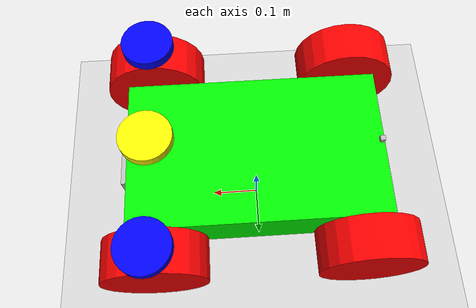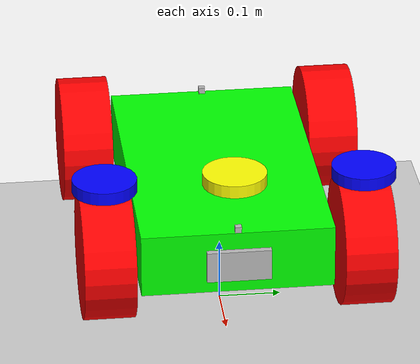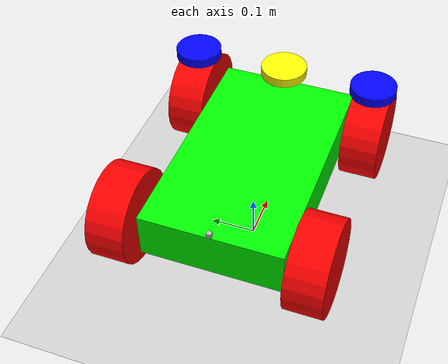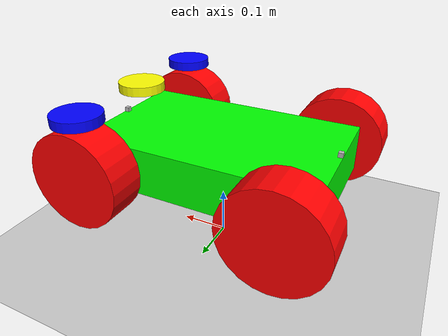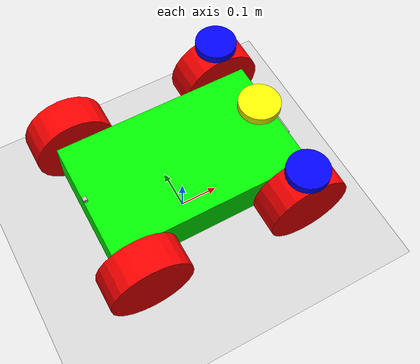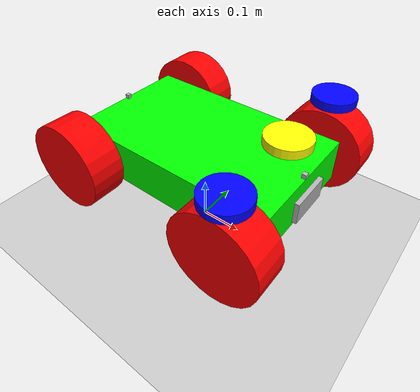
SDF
<sdf version="1.6">
 <world name="steer_bot_playpen">
  <physics name="1ms" type="ode">
   <max_step_size>0.001</max_step_size>
   <real_time_factor>1.0</real_time_factor>
  </physics>
  <plugin filename="libignition-gazebo-physics-system.so" name="ignition::gazebo::systems::Physics"/>
  <plugin filename="ignition-gazebo-sensors-system" name="ignition::gazebo::systems::Sensors">
   <render_engine>ogre2</render_engine>
  </plugin>
  <plugin filename="libignition-gazebo-user-commands-system.so" name="ignition::gazebo::systems::UserCommands"/>
  <plugin filename="libignition-gazebo-scene-broadcaster-system.so" name="ignition::gazebo::systems::SceneBroadcaster"/>
  <plugin filename="libignition-gazebo-imu-system.so" name="ignition::gazebo::systems::Imu"/>
  <scene><ambient>0.7 0.7 0.7</ambient><background>0.8 0.8 0.8</background></scene>
  <light type="directional" name="sun">
   <pose>0 0 10 0 0 0</pose>
   <diffuse>0.8 0.8 0.8 1</diffuse>
   <specular>0.2 0.2 0.2 1</specular>
   <direction>-0.5 0.1 -0.9</direction>
  </light>
  <include>
   <name>ground plane</name>
   <static>1</static>
   <uri>https://fuel.ignitionrobotics.org/1.0/OpenRobotics/models/ground plane</uri>
  </include>
  <include><pose>0 0 0.2 0 0 0</pose><name>steer_bot_01</name><uri>model://steer_bot_ardupilot</uri></include>
 </world>
</sdf>

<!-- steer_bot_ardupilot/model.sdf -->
<sdf version='1.6'>
<model name='steer_bot_ardupilot'>
    <link name='base_link'>
      <inertial>
        <pose>0 0 0 0 -0 0</pose>
        <mass>5</mass>
        <inertia>
          <ixx>0.0416667</ixx>
          <ixy>0</ixy>
          <ixz>0</ixz>
          <iyy>0.108333</iyy>
          <iyz>0</iyz>
          <izz>0.141667</izz>
        </inertia>
      </inertial>
      <collision name='base_link_collision'>
        <pose>0 0 0 0 -0 0</pose>
        <geometry>
          <box>
            <size>0.5 0.3 0.1</size>
          </box>
        </geometry>
        <surface>
          <contact>
            <ode/>
          </contact>
          <friction>
            <ode/>
          </friction>
        </surface>
      </collision>
      <visual name='base_link_visual'>
        <pose>0 0 0 0 -0 0</pose>
        <geometry>
          <box>
            <size>0.5 0.3 0.1</size>
          </box>
        </geometry>
        <material>
          <ambient>0 1 0</ambient>
          <diffuse>0 1 0</diffuse>
          <specular>0.1 0.1 0.1 1</specular>
        </material>
      </visual>
      <gravity>1</gravity>
      <velocity_decay/>
    </link>
    <joint name='front_left_steer_joint' type='revolute'>
      <pose relative_to='base_link'>0.2 0.2 0.12 0 -0 0</pose>
      <parent>base_link</parent>
      <child>front_left_steer_link</child>
      <axis>
        <xyz>0 0 1</xyz>
        <limit>
          <lower>-3.14159</lower>
          <upper>3.14159</upper>
          <effort>10</effort>
          <velocity>5</velocity>
        </limit>
        <dynamics>
          <spring_reference>0</spring_reference>
          <spring_stiffness>0</spring_stiffness>
        </dynamics>
      </axis>
    </joint>
    <link name='front_left_steer_link'>
      <pose relative_to='front_left_steer_joint'>0 0 0 0 -0 0</pose>
      <inertial>
        <pose>0 0 0 0 -0 0</pose>
        <mass>1</mass>
        <inertia>
          <ixx>0.000658333</ixx>
          <ixy>0</ixy>
          <ixz>0</ixz>
          <iyy>0.000658333</iyy>
          <iyz>0</iyz>
          <izz>0.00125</izz>
        </inertia>
      </inertial>
      <collision name='front_left_steer_link_collision'>
        <pose>0 0 0 0 -0 0</pose>
        <geometry>
          <cylinder>
            <length>0.02</length>
            <radius>0.05</radius>
          </cylinder>
        </geometry>
        <surface>
          <contact>
            <ode/>
          </contact>
          <friction>
            <ode/>
          </friction>
        </surface>
      </collision>
      <visual name='front_left_steer_link_visual'>
        <pose>0 0 0 0 -0 0</pose>
        <geometry>
          <cylinder>
            <length>0.02</length>
            <radius>0.05</radius>
          </cylinder>
        </geometry>
        <material>
            <ambient>0 0 1</ambient>
            <diffuse>0 0 1</diffuse>
            <specular>0.1 0.1 0.1 1</specular>
        </material>
      </visual>
      <gravity>1</gravity>
      <velocity_decay/>
    </link>
    <joint name='front_left_wheel_joint' type='revolute'>
      <pose relative_to='front_left_steer_link'>0 0 -0.12 -1.5708 0 0</pose>
      <parent>front_left_steer_link</parent>
      <child>front_left_wheel_link</child>
      <axis>
        <xyz>0 0 1</xyz>
        <limit>
          <lower>-1e+16</lower>
          <upper>1e+16</upper>
        </limit>
        <dynamics>
          <spring_reference>0</spring_reference>
          <spring_stiffness>0</spring_stiffness>
        </dynamics>
      </axis>
    </joint>
    <link name='front_left_wheel_link'>
      <pose relative_to='front_left_wheel_joint'>0 0 0 0 -0 0</pose>
      <inertial>
        <pose>0 0 0 0 -0 0</pose>
        <mass>1</mass>
        <inertia>
          <ixx>0.00303333</ixx>
          <ixy>0</ixy>
          <ixz>0</ixz>
          <iyy>0.00303333</iyy>
          <iyz>0</iyz>
          <izz>0.005</izz>
        </inertia>
      </inertial>
      <collision name='front_left_wheel_link_collision'>
        <pose>0 0 0 0 -0 0</pose>
        <geometry>
          <cylinder>
            <length>0.08</length>
            <radius>0.1</radius>
          </cylinder>
        </geometry>
        <surface>
          <contact>
            <ode/>
          </contact>
          <friction>
            <ode/>
          </friction>
        </surface>
      </collision>
      <visual name='front_left_wheel_link_visual'>
        <pose>0 0 0 0 -0 0</pose>
        <geometry>
          <cylinder>
            <length>0.08</length>
            <radius>0.1</radius>
          </cylinder>
        </geometry>
        <material>
            <ambient>1 0 0</ambient>
            <diffuse>1 0 0</diffuse>
            <specular>0.1 0.1 0.1 1</specular>
        </material>
      </visual>
      <gravity>1</gravity>
      <velocity_decay/>
    </link>
    <joint name='front_right_steer_joint' type='revolute'>
      <pose relative_to='base_link'>0.2 -0.2 0.12 0 -0 0</pose>
      <parent>base_link</parent>
      <child>front_right_steer_link</child>
      <axis>
        <xyz>0 0 1</xyz>
        <limit>
          <lower>-3.14159</lower>
          <upper>3.14159</upper>
          <effort>10</effort>
          <velocity>5</velocity>
        </limit>
        <dynamics>
          <spring_reference>0</spring_reference>
          <spring_stiffness>0</spring_stiffness>
        </dynamics>
      </axis>
    </joint>
    <link name='front_right_steer_link'>
      <pose relative_to='front_right_steer_joint'>0 0 0 0 -0 0</pose>
      <inertial>
        <pose>0 0 0 0 -0 0</pose>
        <mass>1</mass>
        <inertia>
          <ixx>0.000658333</ixx>
          <ixy>0</ixy>
          <ixz>0</ixz>
          <iyy>0.000658333</iyy>
          <iyz>0</iyz>
          <izz>0.00125</izz>
        </inertia>
      </inertial>
      <collision name='front_right_steer_link_collision'>
        <pose>0 0 0 0 -0 0</pose>
        <geometry>
          <cylinder>
            <length>0.02</length>
            <radius>0.05</radius>
          </cylinder>
        </geometry>
        <surface>
          <contact>
            <ode/>
          </contact>
          <friction>
            <ode/>
          </friction>
        </surface>
      </collision>
      <visual name='front_right_steer_link_visual'>
        <pose>0 0 0 0 -0 0</pose>
        <geometry>
          <cylinder>
            <length>0.02</length>
            <radius>0.05</radius>
          </cylinder>
        </geometry>
        <material>
            <ambient>0 0 1</ambient>
            <diffuse>0 0 1</diffuse>
            <specular>0.1 0.1 0.1 1</specular>
        </material>
      </visual>
      <gravity>1</gravity>
      <velocity_decay/>
    </link>
    <joint name='front_right_wheel_joint' type='revolute'>
      <pose relative_to='front_right_steer_link'>0 0 -0.12 -1.5708 0 0</pose>
      <parent>front_right_steer_link</parent>
      <child>front_right_wheel_link</child>
      <axis>
        <xyz>0 0 1</xyz>
        <limit>
          <lower>-1e+16</lower>
          <upper>1e+16</upper>
        </limit>
        <dynamics>
          <spring_reference>0</spring_reference>
          <spring_stiffness>0</spring_stiffness>
        </dynamics>
      </axis>
    </joint>
    <link name='front_right_wheel_link'>
      <pose relative_to='front_right_wheel_joint'>0 0 0 0 -0 0</pose>
      <inertial>
        <pose>0 0 0 0 -0 0</pose>
        <mass>1</mass>
        <inertia>
          <ixx>0.00303333</ixx>
          <ixy>0</ixy>
          <ixz>0</ixz>
          <iyy>0.00303333</iyy>
          <iyz>0</iyz>
          <izz>0.005</izz>
        </inertia>
      </inertial>
      <collision name='front_right_wheel_link_collision'>
        <pose>0 0 0 0 -0 0</pose>
        <geometry>
          <cylinder>
            <length>0.08</length>
            <radius>0.1</radius>
          </cylinder>
        </geometry>
        <surface>
          <contact>
            <ode/>
          </contact>
          <friction>
            <ode/>
          </friction>
        </surface>
      </collision>
      <visual name='front_right_wheel_link_visual'>
        <pose>0 0 0 0 -0 0</pose>
        <geometry>
          <cylinder>
            <length>0.08</length>
            <radius>0.1</radius>
          </cylinder>
        </geometry>
        <material>
            <ambient>1 0 0</ambient>
            <diffuse>1 0 0</diffuse>
            <specular>0.1 0.1 0.1 1</specular>
        </material>
      </visual>
      <gravity>1</gravity>
      <velocity_decay/>
    </link>
    <joint name='front_steer_joint' type='revolute'>
      <pose relative_to='base_link'>0.2 0 0.12 0 -0 0</pose>
      <parent>base_link</parent>
      <child>front_steer_link</child>
      <axis>
        <xyz>0 0 1</xyz>
        <limit>
          <lower>-3.14159</lower>
          <upper>3.14159</upper>
          <effort>10</effort>
          <velocity>5</velocity>
        </limit>
        <dynamics>
          <spring_reference>0</spring_reference>
          <spring_stiffness>0</spring_stiffness>
        </dynamics>
      </axis>
    </joint>
    <link name='front_steer_link'>
      <pose relative_to='front_steer_joint'>0 0 0 0 -0 0</pose>
      <inertial>
        <pose>0 0 0 0 -0 0</pose>
        <mass>1</mass>
        <inertia>
          <ixx>0.000658333</ixx>
          <ixy>0</ixy>
          <ixz>0</ixz>
          <iyy>0.000658333</iyy>
          <iyz>0</iyz>
          <izz>0.00125</izz>
        </inertia>
      </inertial>
      <collision name='front_steer_link_collision'>
        <pose>0 0 0 0 -0 0</pose>
        <geometry>
          <cylinder>
            <length>0.02</length>
            <radius>0.05</radius>
          </cylinder>
        </geometry>
        <surface>
          <contact>
            <ode/>
          </contact>
          <friction>
            <ode/>
          </friction>
        </surface>
      </collision>
      <visual name='front_steer_link_visual'>
        <pose>0 0 0 0 -0 0</pose>
        <geometry>
          <cylinder>
            <length>0.02</length>
            <radius>0.05</radius>
          </cylinder>
        </geometry>
        <material>
            <ambient>1 1 0 1</ambient>
            <diffuse>1 1 0 1</diffuse>
            <specular>0 0 0 0</specular>
        </material>
      </visual>
      <gravity>1</gravity>
      <velocity_decay/>
    </link>
    <joint name='rear_left_wheel_joint' type='revolute'>
      <pose relative_to='base_link'>-0.2 0.2 0 -1.5708 0 0</pose>
      <parent>base_link</parent>
      <child>rear_left_wheel_link</child>
      <axis>
        <xyz>0 0 1</xyz>
        <limit>
          <lower>-1e+16</lower>
          <upper>1e+16</upper>
        </limit>
        <dynamics>
          <spring_reference>0</spring_reference>
          <spring_stiffness>0</spring_stiffness>
        </dynamics>
      </axis>
    </joint>
    <link name='rear_left_wheel_link'>
      <pose relative_to='rear_left_wheel_joint'>0 0 0 0 -0 0</pose>
      <inertial>
        <pose>0 0 0 0 -0 0</pose>
        <mass>1</mass>
        <inertia>
          <ixx>0.00303333</ixx>
          <ixy>0</ixy>
          <ixz>0</ixz>
          <iyy>0.00303333</iyy>
          <iyz>0</iyz>
          <izz>0.005</izz>
        </inertia>
      </inertial>
      <collision name='rear_left_wheel_link_collision'>
        <pose>0 0 0 0 -0 0</pose>
        <geometry>
          <cylinder>
            <length>0.08</length>
            <radius>0.1</radius>
          </cylinder>
        </geometry>
        <surface>
          <contact>
            <ode/>
          </contact>
          <friction>
            <ode/>
          </friction>
        </surface>
      </collision>
      <visual name='rear_left_wheel_link_visual'>
        <pose>0 0 0 0 -0 0</pose>
        <geometry>
          <cylinder>
            <length>0.08</length>
            <radius>0.1</radius>
          </cylinder>
        </geometry>
        <material>
            <ambient>1 0 0</ambient>
            <diffuse>1 0 0</diffuse>
            <specular>0.1 0.1 0.1 1</specular>
        </material>
      </visual>
      <gravity>1</gravity>
      <velocity_decay/>
    </link>
    <joint name='rear_right_wheel_joint' type='revolute'>
      <pose relative_to='base_link'>-0.2 -0.2 0 -1.5708 0 0</pose>
      <parent>base_link</parent>
      <child>rear_right_wheel_link</child>
      <axis>
        <xyz>0 0 1</xyz>
        <limit>
          <lower>-1e+16</lower>
          <upper>1e+16</upper>
        </limit>
        <dynamics>
          <spring_reference>0</spring_reference>
          <spring_stiffness>0</spring_stiffness>
        </dynamics>
      </axis>
    </joint>
    <link name='rear_right_wheel_link'>
      <pose relative_to='rear_right_wheel_joint'>0 0 0 0 -0 0</pose>
      <inertial>
        <pose>0 0 0 0 -0 0</pose>
        <mass>1</mass>
        <inertia>
          <ixx>0.00303333</ixx>
          <ixy>0</ixy>
          <ixz>0</ixz>
          <iyy>0.00303333</iyy>
          <iyz>0</iyz>
          <izz>0.005</izz>
        </inertia>
      </inertial>
      <collision name='rear_right_wheel_link_collision'>
        <pose>0 0 0 0 -0 0</pose>
        <geometry>
          <cylinder>
            <length>0.08</length>
            <radius>0.1</radius>
          </cylinder>
        </geometry>
        <surface>
          <contact>
            <ode/>
          </contact>
          <friction>
            <ode/>
          </friction>
        </surface>
      </collision>
      <visual name='rear_right_wheel_link_visual'>
        <pose>0 0 0 0 -0 0</pose>
        <geometry>
          <cylinder>
            <length>0.08</length>
            <radius>0.1</radius>
          </cylinder>
        </geometry>
        <material>
            <ambient>1 0 0</ambient>
            <diffuse>1 0 0</diffuse>
            <specular>0.1 0.1 0.1 1</specular>
        </material>
      </visual>
      <gravity>1</gravity>
      <velocity_decay/>
    </link>
    <joint name='rear_wheel_joint' type='revolute'>
      <pose relative_to='base_link'>-0.2 0 0 -1.5708 0 0</pose>
      <parent>base_link</parent>
      <child>rear_wheel_link</child>
      <axis>
        <xyz>0 0 1</xyz>
        <limit>
          <lower>-1e+16</lower>
          <upper>1e+16</upper>
        </limit>
        <dynamics>
          <spring_reference>0</spring_reference>
          <spring_stiffness>0</spring_stiffness>
        </dynamics>
      </axis>
    </joint>
    <link name='rear_wheel_link'>
      <pose relative_to='rear_wheel_joint'>0 0 0 0 -0 0</pose>
      <inertial>
        <pose>0 0 0 0 -0 0</pose>
        <mass>0.03125</mass>
        <inertia>
          <ixx>9.04948e-06</ixx>
          <ixy>0</ixy>
          <ixz>0</ixz>
          <iyy>9.04948e-06</iyy>
          <iyz>0</iyz>
          <izz>9.76563e-06</izz>
        </inertia>
      </inertial>
      <collision name='rear_wheel_link_collision'>
        <pose>0 0 0 0 -0 0</pose>
        <geometry>
          <cylinder>
            <length>0.04</length>
            <radius>0.025</radius>
          </cylinder>
        </geometry>
        <surface>
          <contact>
            <ode/>
          </contact>
          <friction>
            <ode/>
          </friction>
        </surface>
      </collision>
      <visual name='rear_wheel_link_visual'>
        <pose>0 0 0 0 -0 0</pose>
        <geometry>
          <cylinder>
            <length>0.04</length>
            <radius>0.025</radius>
          </cylinder>
        </geometry>
        <material>
            <ambient>1 1 0 1</ambient>
            <diffuse>1 1 0 1</diffuse>
            <specular>0 0 0 0</specular>
        </material>
      </visual>
      <gravity>1</gravity>
      <velocity_decay/>
    </link>

    <!-- plugins -->
    <plugin name="ignition::gazebo::systems::JointStatePublisher"
        filename="libignition-gazebo-joint-state-publisher-system.so">
    </plugin>
    <plugin name="ignition::gazebo::systems::ApplyJointForce"
        filename="libignition-gazebo-apply-joint-force-system.so">
        <joint_name>rear_left_wheel_joint</joint_name>
    </plugin>
    <plugin name="ignition::gazebo::systems::ApplyJointForce"
        filename="libignition-gazebo-apply-joint-force-system.so">
        <joint_name>rear_right_wheel_joint</joint_name>
    </plugin>
    <plugin name="ignition::gazebo::systems::ApplyJointForce"
        filename="libignition-gazebo-apply-joint-force-system.so">
        <joint_name>front_left_steer_joint</joint_name>
    </plugin>
    <plugin name="ignition::gazebo::systems::ApplyJointForce"
        filename="libignition-gazebo-apply-joint-force-system.so">
        <joint_name>front_right_steer_joint</joint_name>
    </plugin>
    <plugin name="ArduPilotPlugin"
        filename="libArduPilotPlugin.so">
        <!-- Port settings -->
        <fdm_addr>127.0.0.1</fdm_addr>
        <fdm_port_in>9002</fdm_port_in>
        <connectionTimeoutMaxCount>5</connectionTimeoutMaxCount>
        <modelXYZToAirplaneXForwardZDown>0 0 0 3.141593 0 0</modelXYZToAirplaneXForwardZDown>
        <gazeboXYZToNED>0 0 0 3.141593 0 0</gazeboXYZToNED>

        <!-- Sensors -->
        <imuName>imu_sensor</imuName>

        <!-- Control / channels -->

        <!--
            SERVO1_FUNCTION 94 (Script 1)
        -->
        <control channel="0">
            <jointName>rear_left_wheel_joint</jointName>
            <useForce>1</useForce>
            <multiplier>100.0</multiplier>
            <offset>-0.5</offset>
            <servo_min>1000</servo_min>
            <servo_max>2000</servo_max>
            <type>VELOCITY</type>
            <p_gain>1</p_gain>
            <i_gain>0</i_gain>
            <d_gain>0</d_gain>
            <i_max>1</i_max>
            <i_min>0</i_min>
            <cmd_max>50.0</cmd_max>
            <cmd_min>-50.0</cmd_min>
        </control>

        <!--
            SERVO2_FUNCTION 95 (Script 2)
        -->
        <control channel="1">
            <jointName>rear_right_wheel_joint</jointName>
            <useForce>1</useForce>
            <multiplier>100.0</multiplier>
            <offset>-0.5</offset>
            <servo_min>1000</servo_min>
            <servo_max>2000</servo_max>
            <type>VELOCITY</type>
            <p_gain>1</p_gain>
            <i_gain>0</i_gain>
            <d_gain>0</d_gain>
            <i_max>1</i_max>
            <i_min>0</i_min>
            <cmd_max>50.0</cmd_max>
            <cmd_min>-50.0</cmd_min>
        </control>

        <!--
            SERVO3_FUNCTION 96 (Script 3)
        -->
        <control channel="2">
            <jointName>front_left_steer_joint</jointName>
            <useForce>1</useForce>
            <multiplier>1.570796327</multiplier>
            <offset>-0.5</offset>
            <servo_min>1000</servo_min>
            <servo_max>2000</servo_max>
            <type>POSITION</type>
            <p_gain>2.0</p_gain>
            <i_gain>0</i_gain>
            <d_gain>0.1</d_gain>
            <i_max>1</i_max>
            <i_min>0</i_min>
            <cmd_max>2.0</cmd_max>
            <cmd_min>-2.0</cmd_min>
        </control>

        <!--
            SERVO4_FUNCTION 97 (Script 4)
        -->
        <control channel="3">
            <jointName>front_right_steer_joint</jointName>
            <useForce>1</useForce>
            <multiplier>1.570796327</multiplier>
            <offset>-0.5</offset>
            <servo_min>1000</servo_min>
            <servo_max>2000</servo_max>
            <type>POSITION</type>
            <p_gain>2.0</p_gain>
            <i_gain>0</i_gain>
            <d_gain>0.1</d_gain>
            <i_max>1</i_max>
            <i_min>0</i_min>
            <cmd_max>2.0</cmd_max>
            <cmd_min>-2.0</cmd_min>
        </control>

        <!-- Sonar sensor -->
        <sensor>
            <type>sonar</type>
            <index>1</index>
            <topic>sonar_front_link/sensor/sonar</topic>
        </sensor>

        <!-- Do not register left sensor -->

        <sensor>
            <type>sonar</type>
            <index>2</index>
            <topic>sonar_back_link/sensor/sonar</topic>
        </sensor>

        <!-- Do not register right sensor -->

    </plugin>

    <!-- IMU -->
    <link name='imu_link'>
        <inertial>
            <mass>0.01</mass>
            <inertia>
                <ixx>1.66667E-07</ixx>
                <ixy>0</ixy>
                <ixz>0</ixz>
                <iyy>1.66667E-07</iyy>
                <iyz>0</iyz>
                <izz>1.66667E-07</izz>
            </inertia>
        </inertial>
        <sensor name="imu_sensor" type="imu">
            <pose>0 0 0 3.141593 0 0</pose>
            <always_on>1</always_on>
            <update_rate>1000.0</update_rate>
        </sensor>
    </link>

    <!-- A fixed joint is unstable - too much vibration for IMU -->
    <joint name='imu_joint' type='revolute'>
        <child>imu_link</child>
        <parent>base_link</parent>
        <axis>
            <xyz>0 0 1</xyz>
            <limit>
                <lower>0</lower>
                <upper>0</upper>
                <effort>0</effort>
                <velocity>0</velocity>
            </limit>
            <dynamics>
                <spring_reference>0</spring_reference>
                <spring_stiffness>0</spring_stiffness>
            </dynamics>
            <use_parent_model_frame>1</use_parent_model_frame>
        </axis>
    </joint>

    <!-- Camera -->
    <link name='camera_link'>
        <pose>0.26 0 0 0 0 0</pose>
        <inertial>
            <mass>0.1</mass>
            <inertia>
                <ixx>0.000166667</ixx>
                <iyy>0.000166667</iyy>
                <izz>0.000166667</izz>
            </inertia>
        </inertial>
        <collision name="collision">
            <geometry>
                <box>
                    <size>0.01 0.1 0.05</size>
                </box>
            </geometry>
        </collision>
        <visual name="visual">
            <geometry>
                <box>
                    <size>0.01 0.1 0.05</size>
                </box>
            </geometry>
        </visual>
        <sensor name="camera" type="camera">
            <camera>
                <horizontal_fov>1.047</horizontal_fov>
                <image>
                    <width>320</width>
                    <height>240</height>
                </image>
                <clip>
                    <near>0.1</near>
                    <far>100</far>
                </clip>
            </camera>
            <always_on>1</always_on>
            <update_rate>30</update_rate>
            <visualize>true</visualize>
        </sensor>
    </link>

    <joint name='camera_joint' type='revolute'>
        <child>camera_link</child>
        <parent>base_link</parent>
        <axis>
            <xyz>0 0 1</xyz>
            <limit>
                <lower>0</lower>
                <upper>0</upper>
                <effort>0</effort>
                <velocity>0</velocity>
            </limit>
            <dynamics>
                <damping>1.0</damping>
            </dynamics>
            <use_parent_model_frame>1</use_parent_model_frame>
        </axis>
        <physics>
            <ode>
                <implicit_spring_damper>1</implicit_spring_damper>
            </ode>
        </physics>
    </joint>

    <!-- RangeFinder -->
    <link name='sonar_front_link'>
        <pose>0.245 0 0.055 0 0 0</pose>
        <inertial>
            <mass>0.1</mass>
            <inertia>
                <ixx>0.000166667</ixx>
                <iyy>0.000166667</iyy>
                <izz>0.000166667</izz>
            </inertia>
        </inertial>
        <collision name="collision">
            <geometry>
                <box>
                    <size>0.01 0.01 0.01</size>
                </box>
            </geometry>
        </collision>
        <visual name="visual">
            <geometry>
                <box>
                    <size>0.01 0.01 0.01</size>
                </box>
            </geometry>
        </visual>
        <sensor name='gpu_lidar' type='gpu_lidar'>
            <topic>sonar_front_link/sensor/sonar</topic>
            <update_rate>10</update_rate>
            <lidar>
                <scan>
                    <horizontal>
                        <samples>8</samples>
                        <resolution>1</resolution>
                        <min_angle>-0.261799</min_angle>
                        <max_angle>0.261799</max_angle>
                    </horizontal>
                    <vertical>
                        <samples>4</samples>
                        <resolution>1</resolution>
                        <min_angle>0</min_angle>
                        <max_angle>0.261799</max_angle>
                    </vertical>
                </scan>
                <range>
                    <min>0.08</min>
                    <max>10.0</max>
                    <resolution>0.01</resolution>
                </range>
            </lidar>
            <alwaysOn>1</alwaysOn>
            <visualize>true</visualize>
        </sensor>
    </link>

    <joint name='sonar_front_joint' type='revolute'>
        <child>sonar_front_link</child>
        <parent>base_link</parent>
        <axis>
            <xyz>0 0 1</xyz>
            <limit>
                <lower>0</lower>
                <upper>0</upper>
                <effort>0</effort>
                <velocity>0</velocity>
            </limit>
            <dynamics>
                <spring_reference>0</spring_reference>
                <spring_stiffness>0</spring_stiffness>
            </dynamics>
            <use_parent_model_frame>1</use_parent_model_frame>
        </axis>
    </joint>

    <link name='sonar_back_link'>
        <pose>-0.245 0 0.055 0 0 3.1415926</pose>
        <inertial>
            <mass>0.1</mass>
            <inertia>
                <ixx>0.000166667</ixx>
                <iyy>0.000166667</iyy>
                <izz>0.000166667</izz>
            </inertia>
        </inertial>
        <collision name="collision">
            <geometry>
                <box>
                    <size>0.01 0.01 0.01</size>
                </box>
            </geometry>
        </collision>
        <visual name="visual">
            <geometry>
                <box>
                    <size>0.01 0.01 0.01</size>
                </box>
            </geometry>
        </visual>
        <sensor name='gpu_lidar' type='gpu_lidar'>
            <topic>sonar_back_link/sensor/sonar</topic>
            <update_rate>10</update_rate>
            <lidar>
                <scan>
                    <horizontal>
                        <samples>8</samples>
                        <resolution>1</resolution>
                        <min_angle>-0.261799</min_angle>
                        <max_angle>0.261799</max_angle>
                    </horizontal>
                    <vertical>
                        <samples>4</samples>
                        <resolution>1</resolution>
                        <min_angle>0</min_angle>
                        <max_angle>0.261799</max_angle>
                    </vertical>
                </scan>
                <range>
                    <min>0.08</min>
                    <max>10.0</max>
                    <resolution>0.01</resolution>
                </range>
            </lidar>
            <alwaysOn>1</alwaysOn>
            <visualize>true</visualize>
        </sensor>
    </link>

    <joint name='sonar_back_joint' type='revolute'>
        <child>sonar_back_link</child>
        <parent>base_link</parent>
        <axis>
            <xyz>0 0 1</xyz>
            <limit>
                <lower>0</lower>
                <upper>0</upper>
                <effort>0</effort>
                <velocity>0</velocity>
            </limit>
            <dynamics>
                <spring_reference>0</spring_reference>
                <spring_stiffness>0</spring_stiffness>
            </dynamics>
            <use_parent_model_frame>1</use_parent_model_frame>
        </axis>
    </joint>

</model>
</sdf>
